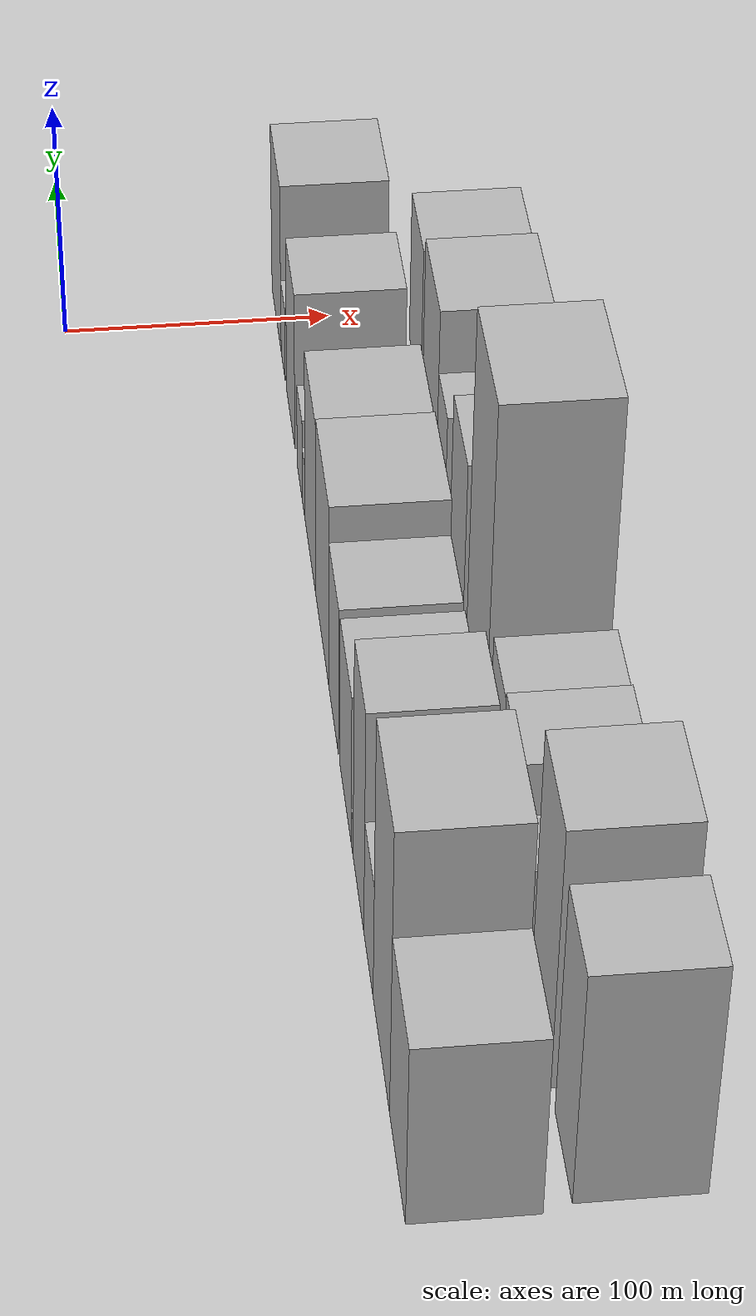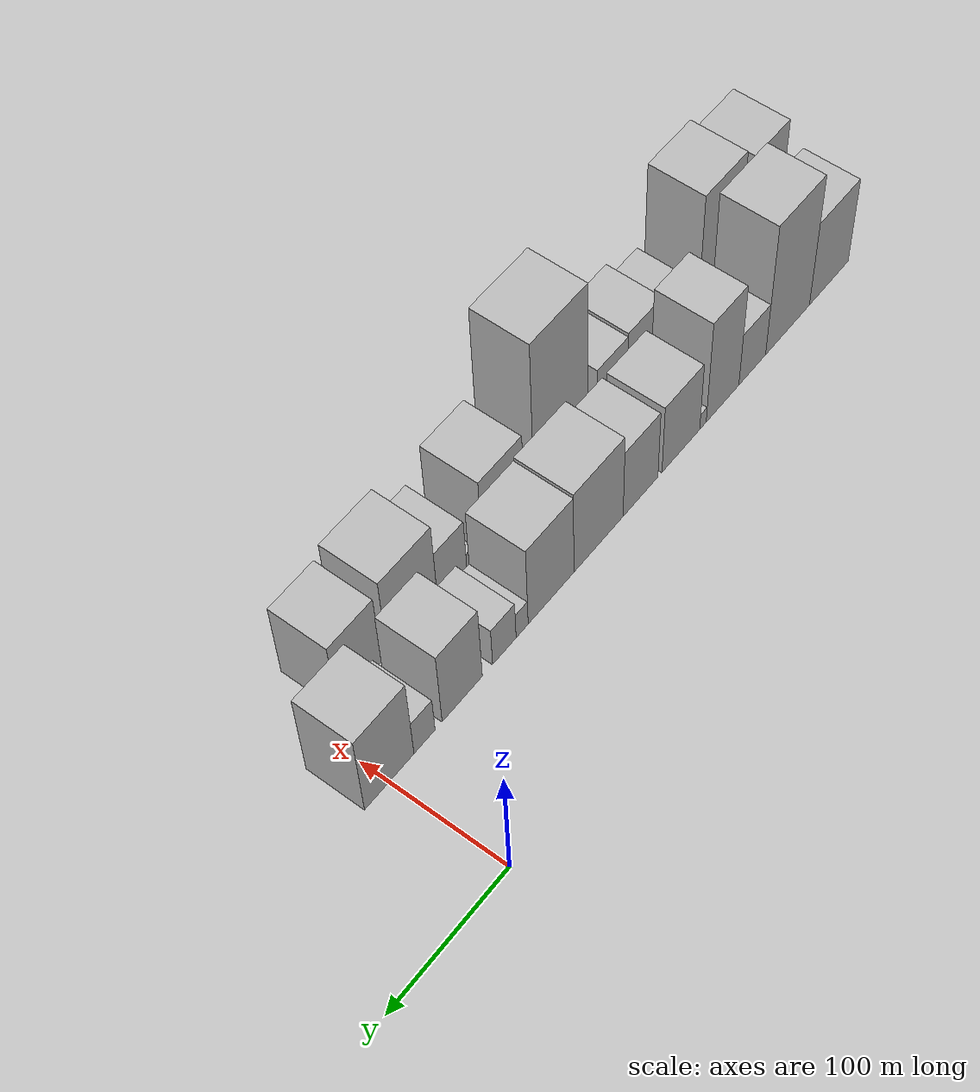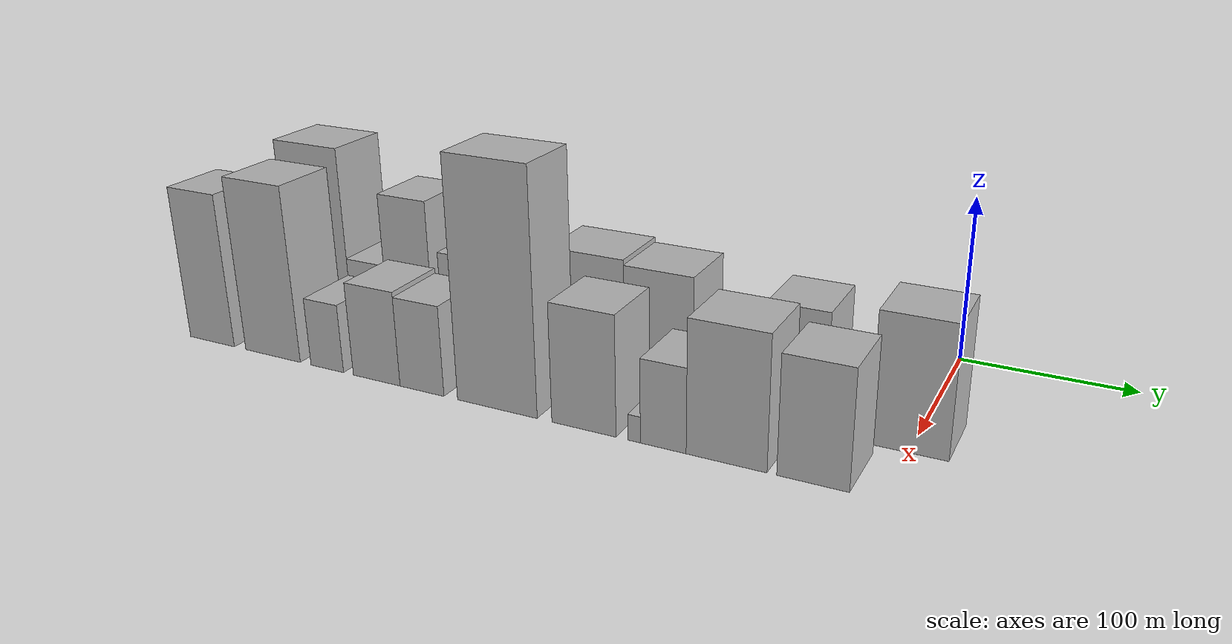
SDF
<sdf version="1.6">
 <world name="default">
  <model name="building_1">
   <static>1</static>
   <pose>100.0000 -416.8968 0 0.000000 0.000000 0.000000</pose>
   <link name="link">
    <pose>0 0 37.50 0 0 0</pose>
    <collision name="collision"><geometry><box><size>40.0000 42.2064 75.0000</size></box></geometry></collision>
    <visual name="visual">
     <cast_shadows>0</cast_shadows>
     <geometry><box><size>40.0000 42.2064 75.0000</size></box></geometry>
     <material>
      <script>
       <uri>model://HANNAS_wall/materials/scripts</uri>
       <uri>model://HANNAS_wall/materials/textures</uri>
       <name>vrc/HANNAS_wall</name>
      </script>
     </material>
    </visual>
   </link>
  </model>
  <model name="building_2">
   <static>1</static>
   <pose>100.0000 -372.5448 0 0.000000 0.000000 0.000000</pose>
   <link name="link">
    <pose>0 0 58.50 0 0 0</pose>
    <collision name="collision"><geometry><box><size>40.0000 46.4976 117.0000</size></box></geometry></collision>
    <visual name="visual">
     <cast_shadows>0</cast_shadows>
     <geometry><box><size>40.0000 46.4976 117.0000</size></box></geometry>
     <material>
      <script>
       <uri>model://HANNAS_wall/materials/scripts</uri>
       <uri>model://HANNAS_wall/materials/textures</uri>
       <name>vrc/HANNAS_wall</name>
      </script>
     </material>
    </visual>
   </link>
  </model>
  <model name="building_3">
   <static>1</static>
   <pose>100.0000 -335.4504 0 0.000000 0.000000 0.000000</pose>
   <link name="link">
    <pose>0 0 24.00 0 0 0</pose>
    <collision name="collision"><geometry><box><size>40.0000 27.6911 48.0000</size></box></geometry></collision>
    <visual name="visual">
     <cast_shadows>0</cast_shadows>
     <geometry><box><size>40.0000 27.6911 48.0000</size></box></geometry>
     <material>
      <script>
       <uri>model://HANNAS_wall/materials/scripts</uri>
       <uri>model://HANNAS_wall/materials/textures</uri>
       <name>vrc/HANNAS_wall</name>
      </script>
     </material>
    </visual>
   </link>
  </model>
  <model name="building_4">
   <static>1</static>
   <pose>100.0000 -305.0278 0 0.000000 0.000000 0.000000</pose>
   <link name="link">
    <pose>0 0 46.50 0 0 0</pose>
    <collision name="collision"><geometry><box><size>40.0000 33.1542 93.0000</size></box></geometry></collision>
    <visual name="visual">
     <cast_shadows>0</cast_shadows>
     <geometry><box><size>40.0000 33.1542 93.0000</size></box></geometry>
     <material>
      <script>
       <uri>model://HANNAS_wall/materials/scripts</uri>
       <uri>model://HANNAS_wall/materials/textures</uri>
       <name>vrc/HANNAS_wall</name>
      </script>
     </material>
    </visual>
   </link>
  </model>
  <model name="building_5">
   <static>1</static>
   <pose>100.0000 -285.1943 0 0.000000 0.000000 0.000000</pose>
   <link name="link">
    <pose>0 0 7.50 0 0 0</pose>
    <collision name="collision"><geometry><box><size>40.0000 6.5128 15.0000</size></box></geometry></collision>
    <visual name="visual">
     <cast_shadows>0</cast_shadows>
     <geometry><box><size>40.0000 6.5128 15.0000</size></box></geometry>
     <material>
      <script>
       <uri>model://HANNAS_wall/materials/scripts</uri>
       <uri>model://HANNAS_wall/materials/textures</uri>
       <name>vrc/HANNAS_wall</name>
      </script>
     </material>
    </visual>
   </link>
  </model>
  <model name="building_6">
   <static>1</static>
   <pose>100.0000 -263.3251 0 0.000000 0.000000 0.000000</pose>
   <link name="link">
    <pose>0 0 31.50 0 0 0</pose>
    <collision name="collision"><geometry><box><size>40.0000 37.2256 63.0000</size></box></geometry></collision>
    <visual name="visual">
     <cast_shadows>0</cast_shadows>
     <geometry><box><size>40.0000 37.2256 63.0000</size></box></geometry>
     <material>
      <script>
       <uri>model://HANNAS_wall/materials/scripts</uri>
       <uri>model://HANNAS_wall/materials/textures</uri>
       <name>vrc/HANNAS_wall</name>
      </script>
     </material>
    </visual>
   </link>
  </model>
  <model name="building_7">
   <static>1</static>
   <pose>100.0000 -223.9966 0 0.000000 0.000000 0.000000</pose>
   <link name="link">
    <pose>0 0 31.50 0 0 0</pose>
    <collision name="collision"><geometry><box><size>40.0000 33.4315 63.0000</size></box></geometry></collision>
    <visual name="visual">
     <cast_shadows>0</cast_shadows>
     <geometry><box><size>40.0000 33.4315 63.0000</size></box></geometry>
     <material>
      <script>
       <uri>model://HANNAS_wall/materials/scripts</uri>
       <uri>model://HANNAS_wall/materials/textures</uri>
       <name>vrc/HANNAS_wall</name>
      </script>
     </material>
    </visual>
   </link>
  </model>
  <model name="building_8">
   <static>1</static>
   <pose>100.0000 -184.1923 0 0.000000 0.000000 0.000000</pose>
   <link name="link">
    <pose>0 0 39.00 0 0 0</pose>
    <collision name="collision"><geometry><box><size>40.0000 46.1773 78.0000</size></box></geometry></collision>
    <visual name="visual">
     <cast_shadows>0</cast_shadows>
     <geometry><box><size>40.0000 46.1773 78.0000</size></box></geometry>
     <material>
      <script>
       <uri>model://HANNAS_wall/materials/scripts</uri>
       <uri>model://HANNAS_wall/materials/textures</uri>
       <name>vrc/HANNAS_wall</name>
      </script>
     </material>
    </visual>
   </link>
  </model>
  <model name="building_9">
   <static>1</static>
   <pose>100.0000 -140.3430 0 0.000000 0.000000 0.000000</pose>
   <link name="link">
    <pose>0 0 37.50 0 0 0</pose>
    <collision name="collision"><geometry><box><size>40.0000 41.5213 75.0000</size></box></geometry></collision>
    <visual name="visual">
     <cast_shadows>0</cast_shadows>
     <geometry><box><size>40.0000 41.5213 75.0000</size></box></geometry>
     <material>
      <script>
       <uri>model://HANNAS_wall/materials/scripts</uri>
       <uri>model://HANNAS_wall/materials/textures</uri>
       <name>vrc/HANNAS_wall</name>
      </script>
     </material>
    </visual>
   </link>
  </model>
  <model name="building_10">
   <static>1</static>
   <pose>100.0000 -114.1921 0 0.000000 0.000000 0.000000</pose>
   <link name="link">
    <pose>0 0 12.00 0 0 0</pose>
    <collision name="collision"><geometry><box><size>40.0000 10.7806 24.0000</size></box></geometry></collision>
    <visual name="visual">
     <cast_shadows>0</cast_shadows>
     <geometry><box><size>40.0000 10.7806 24.0000</size></box></geometry>
     <material>
      <script>
       <uri>model://HANNAS_wall/materials/scripts</uri>
       <uri>model://HANNAS_wall/materials/textures</uri>
       <name>vrc/HANNAS_wall</name>
      </script>
     </material>
    </visual>
   </link>
  </model>
  <model name="building_11">
   <static>1</static>
   <pose>100.0000 -98.4244 0 0.000000 0.000000 0.000000</pose>
   <link name="link">
    <pose>0 0 18.00 0 0 0</pose>
    <collision name="collision"><geometry><box><size>40.0000 20.7548 36.0000</size></box></geometry></collision>
    <visual name="visual">
     <cast_shadows>0</cast_shadows>
     <geometry><box><size>40.0000 20.7548 36.0000</size></box></geometry>
     <material>
      <script>
       <uri>model://HANNAS_wall/materials/scripts</uri>
       <uri>model://HANNAS_wall/materials/textures</uri>
       <name>vrc/HANNAS_wall</name>
      </script>
     </material>
    </visual>
   </link>
  </model>
  <model name="building_12">
   <static>1</static>
   <pose>100.0000 -61.7388 0 0.000000 0.000000 0.000000</pose>
   <link name="link">
    <pose>0 0 34.50 0 0 0</pose>
    <collision name="collision"><geometry><box><size>40.0000 34.6165 69.0000</size></box></geometry></collision>
    <visual name="visual">
     <cast_shadows>0</cast_shadows>
     <geometry><box><size>40.0000 34.6165 69.0000</size></box></geometry>
     <material>
      <script>
       <uri>model://HANNAS_wall/materials/scripts</uri>
       <uri>model://HANNAS_wall/materials/textures</uri>
       <name>vrc/HANNAS_wall</name>
      </script>
     </material>
    </visual>
   </link>
  </model>
  <model name="building_13">
   <static>1</static>
   <pose>100.0000 -29.5615 0 0.000000 0.000000 0.000000</pose>
   <link name="link">
    <pose>0 0 16.50 0 0 0</pose>
    <collision name="collision"><geometry><box><size>40.0000 17.7382 33.0000</size></box></geometry></collision>
    <visual name="visual">
     <cast_shadows>0</cast_shadows>
     <geometry><box><size>40.0000 17.7382 33.0000</size></box></geometry>
     <material>
      <script>
       <uri>model://HANNAS_wall/materials/scripts</uri>
       <uri>model://HANNAS_wall/materials/textures</uri>
       <name>vrc/HANNAS_wall</name>
      </script>
     </material>
    </visual>
   </link>
  </model>
  <model name="building_14">
   <static>1</static>
   <pose>100.0000 -0.2801 0 0.000000 0.000000 0.000000</pose>
   <link name="link">
    <pose>0 0 37.50 0 0 0</pose>
    <collision name="collision"><geometry><box><size>40.0000 40.8246 75.0000</size></box></geometry></collision>
    <visual name="visual">
     <cast_shadows>0</cast_shadows>
     <geometry><box><size>40.0000 40.8246 75.0000</size></box></geometry>
     <material>
      <script>
       <uri>model://HANNAS_wall/materials/scripts</uri>
       <uri>model://HANNAS_wall/materials/textures</uri>
       <name>vrc/HANNAS_wall</name>
      </script>
     </material>
    </visual>
   </link>
  </model>
  <model name="building_25">
   <static>1</static>
   <pose>149.0000 -417.4397 0 0.000000 0.000000 0.000000</pose>
   <link name="link">
    <pose>0 0 48.00 0 0 0</pose>
    <collision name="collision"><geometry><box><size>40.0000 35.1206 96.0000</size></box></geometry></collision>
    <visual name="visual">
     <cast_shadows>0</cast_shadows>
     <geometry><box><size>40.0000 35.1206 96.0000</size></box></geometry>
     <material>
      <script>
       <uri>model://HANNAS_wall/materials/scripts</uri>
       <uri>model://HANNAS_wall/materials/textures</uri>
       <name>vrc/HANNAS_wall</name>
      </script>
     </material>
    </visual>
   </link>
  </model>
  <model name="building_26">
   <static>1</static>
   <pose>149.0000 -370.1096 0 0.000000 0.000000 0.000000</pose>
   <link name="link">
    <pose>0 0 54.00 0 0 0</pose>
    <collision name="collision"><geometry><box><size>40.0000 41.5396 108.0000</size></box></geometry></collision>
    <visual name="visual">
     <cast_shadows>0</cast_shadows>
     <geometry><box><size>40.0000 41.5396 108.0000</size></box></geometry>
     <material>
      <script>
       <uri>model://HANNAS_wall/materials/scripts</uri>
       <uri>model://HANNAS_wall/materials/textures</uri>
       <name>vrc/HANNAS_wall</name>
      </script>
     </material>
    </visual>
   </link>
  </model>
  <model name="building_27">
   <static>1</static>
   <pose>149.0000 -329.4799 0 0.000000 0.000000 0.000000</pose>
   <link name="link">
    <pose>0 0 21.00 0 0 0</pose>
    <collision name="collision"><geometry><box><size>40.0000 23.7198 42.0000</size></box></geometry></collision>
    <visual name="visual">
     <cast_shadows>0</cast_shadows>
     <geometry><box><size>40.0000 23.7198 42.0000</size></box></geometry>
     <material>
      <script>
       <uri>model://HANNAS_wall/materials/scripts</uri>
       <uri>model://HANNAS_wall/materials/textures</uri>
       <name>vrc/HANNAS_wall</name>
      </script>
     </material>
    </visual>
   </link>
  </model>
  <model name="building_28">
   <static>1</static>
   <pose>149.0000 -294.2608 0 0.000000 0.000000 0.000000</pose>
   <link name="link">
    <pose>0 0 28.50 0 0 0</pose>
    <collision name="collision"><geometry><box><size>40.0000 32.7182 57.0000</size></box></geometry></collision>
    <visual name="visual">
     <cast_shadows>0</cast_shadows>
     <geometry><box><size>40.0000 32.7182 57.0000</size></box></geometry>
     <material>
      <script>
       <uri>model://HANNAS_wall/materials/scripts</uri>
       <uri>model://HANNAS_wall/materials/textures</uri>
       <name>vrc/HANNAS_wall</name>
      </script>
     </material>
    </visual>
   </link>
  </model>
  <model name="building_29">
   <static>1</static>
   <pose>149.0000 -263.0924 0 0.000000 0.000000 0.000000</pose>
   <link name="link">
    <pose>0 0 27.00 0 0 0</pose>
    <collision name="collision"><geometry><box><size>40.0000 29.6186 54.0000</size></box></geometry></collision>
    <visual name="visual">
     <cast_shadows>0</cast_shadows>
     <geometry><box><size>40.0000 29.6186 54.0000</size></box></geometry>
     <material>
      <script>
       <uri>model://HANNAS_wall/materials/scripts</uri>
       <uri>model://HANNAS_wall/materials/textures</uri>
       <name>vrc/HANNAS_wall</name>
      </script>
     </material>
    </visual>
   </link>
  </model>
  <model name="building_30">
   <static>1</static>
   <pose>149.0000 -213.9517 0 0.000000 0.000000 0.000000</pose>
   <link name="link">
    <pose>0 0 70.50 0 0 0</pose>
    <collision name="collision"><geometry><box><size>40.0000 50.6628 141.0000</size></box></geometry></collision>
    <visual name="visual">
     <cast_shadows>0</cast_shadows>
     <geometry><box><size>40.0000 50.6628 141.0000</size></box></geometry>
     <material>
      <script>
       <uri>model://HANNAS_wall/materials/scripts</uri>
       <uri>model://HANNAS_wall/materials/textures</uri>
       <name>vrc/HANNAS_wall</name>
      </script>
     </material>
    </visual>
   </link>
  </model>
  <model name="building_31">
   <static>1</static>
   <pose>149.0000 -160.5037 0 0.000000 0.000000 0.000000</pose>
   <link name="link">
    <pose>0 0 34.50 0 0 0</pose>
    <collision name="collision"><geometry><box><size>40.0000 38.2331 69.0000</size></box></geometry></collision>
    <visual name="visual">
     <cast_shadows>0</cast_shadows>
     <geometry><box><size>40.0000 38.2331 69.0000</size></box></geometry>
     <material>
      <script>
       <uri>model://HANNAS_wall/materials/scripts</uri>
       <uri>model://HANNAS_wall/materials/textures</uri>
       <name>vrc/HANNAS_wall</name>
      </script>
     </material>
    </visual>
   </link>
  </model>
  <model name="building_32">
   <static>1</static>
   <pose>149.0000 -130.9024 0 0.000000 0.000000 0.000000</pose>
   <link name="link">
    <pose>0 0 7.50 0 0 0</pose>
    <collision name="collision"><geometry><box><size>40.0000 6.9696 15.0000</size></box></geometry></collision>
    <visual name="visual">
     <cast_shadows>0</cast_shadows>
     <geometry><box><size>40.0000 6.9696 15.0000</size></box></geometry>
     <material>
      <script>
       <uri>model://HANNAS_wall/materials/scripts</uri>
       <uri>model://HANNAS_wall/materials/textures</uri>
       <name>vrc/HANNAS_wall</name>
      </script>
     </material>
    </visual>
   </link>
  </model>
  <model name="building_33">
   <static>1</static>
   <pose>149.0000 -114.5510 0 0.000000 0.000000 0.000000</pose>
   <link name="link">
    <pose>0 0 24.00 0 0 0</pose>
    <collision name="collision"><geometry><box><size>40.0000 25.7333 48.0000</size></box></geometry></collision>
    <visual name="visual">
     <cast_shadows>0</cast_shadows>
     <geometry><box><size>40.0000 25.7333 48.0000</size></box></geometry>
     <material>
      <script>
       <uri>model://HANNAS_wall/materials/scripts</uri>
       <uri>model://HANNAS_wall/materials/textures</uri>
       <name>vrc/HANNAS_wall</name>
      </script>
     </material>
    </visual>
   </link>
  </model>
  <model name="building_34">
   <static>1</static>
   <pose>149.0000 -79.9628 0 0.000000 0.000000 0.000000</pose>
   <link name="link">
    <pose>0 0 37.50 0 0 0</pose>
    <collision name="collision"><geometry><box><size>40.0000 43.4430 75.0000</size></box></geometry></collision>
    <visual name="visual">
     <cast_shadows>0</cast_shadows>
     <geometry><box><size>40.0000 43.4430 75.0000</size></box></geometry>
     <material>
      <script>
       <uri>model://HANNAS_wall/materials/scripts</uri>
       <uri>model://HANNAS_wall/materials/textures</uri>
       <name>vrc/HANNAS_wall</name>
      </script>
     </material>
    </visual>
   </link>
  </model>
  <model name="building_35">
   <static>1</static>
   <pose>149.0000 -34.7926 0 0.000000 0.000000 0.000000</pose>
   <link name="link">
    <pose>0 0 33.00 0 0 0</pose>
    <collision name="collision"><geometry><box><size>40.0000 36.8974 66.0000</size></box></geometry></collision>
    <visual name="visual">
     <cast_shadows>0</cast_shadows>
     <geometry><box><size>40.0000 36.8974 66.0000</size></box></geometry>
     <material>
      <script>
       <uri>model://HANNAS_wall/materials/scripts</uri>
       <uri>model://HANNAS_wall/materials/textures</uri>
       <name>vrc/HANNAS_wall</name>
      </script>
     </material>
    </visual>
   </link>
  </model>
 </world>
</sdf>
